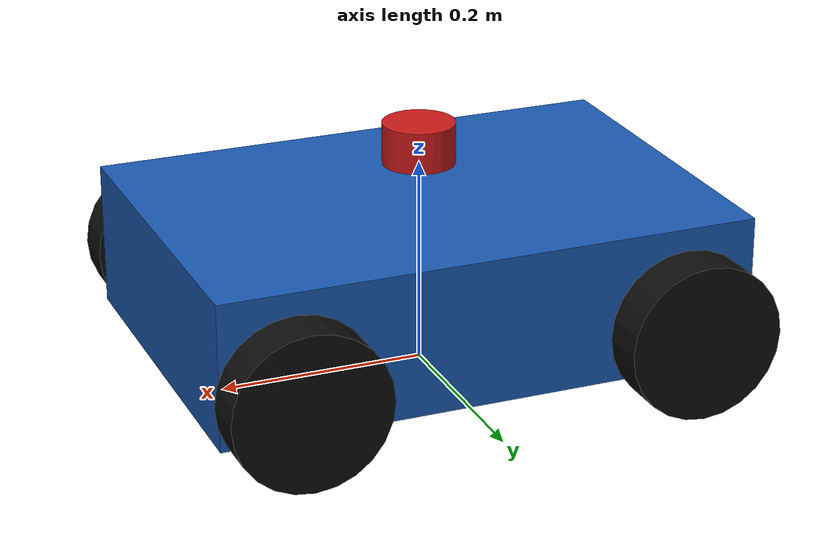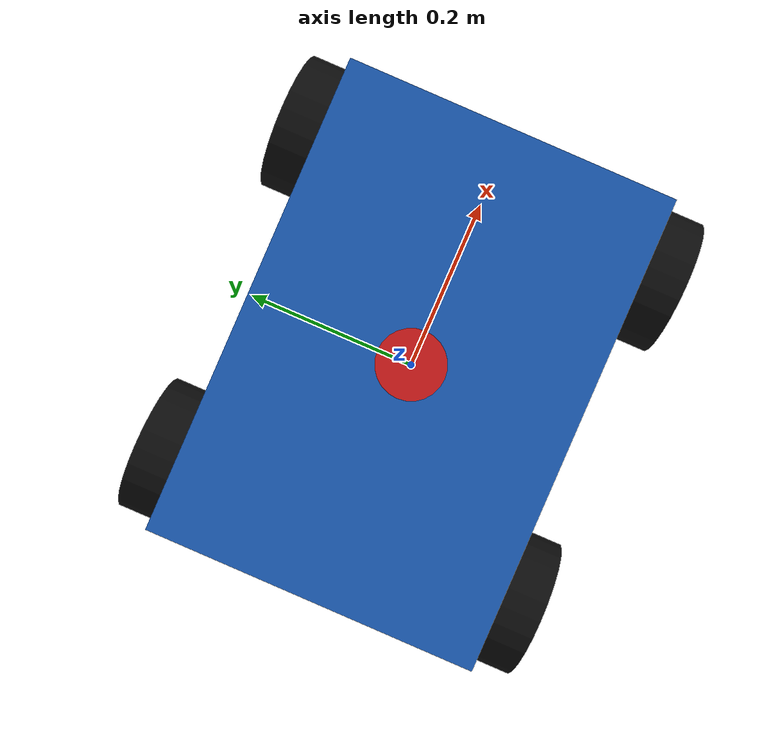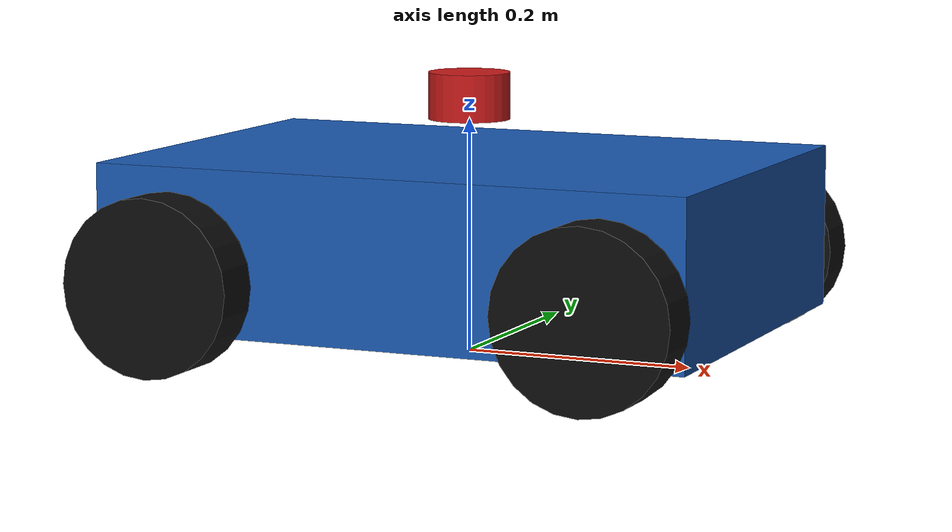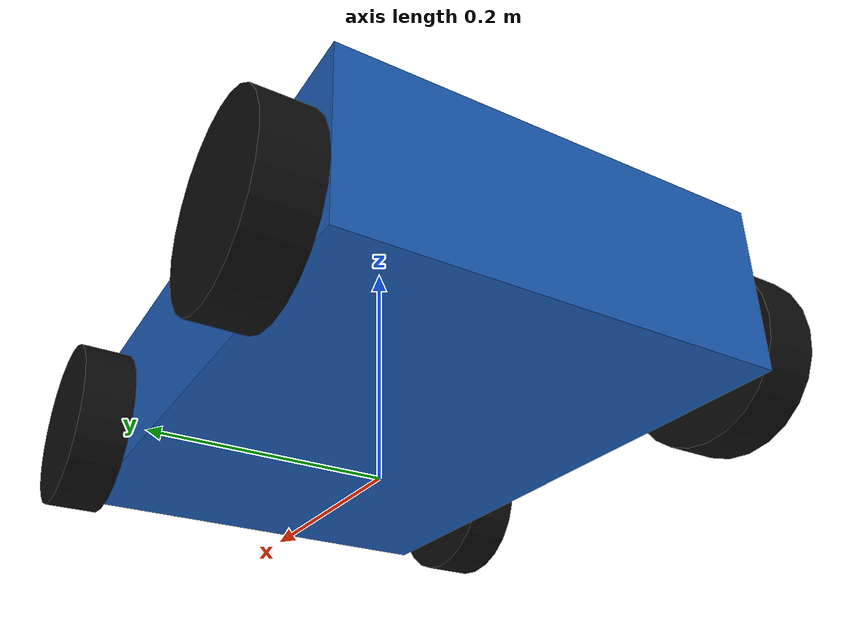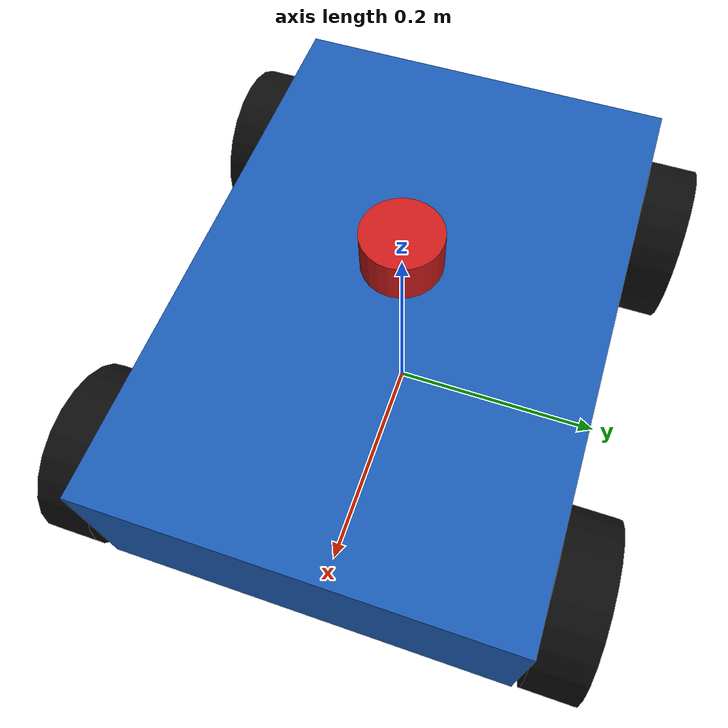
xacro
<?xml version="1.0"?>
<robot name="four_wheel_robot" xmlns:xacro="http://www.ros.org/wiki/xacro">
  <xacro:property name="body_length" value="0.52"/>
  <xacro:property name="body_width" value="0.36"/>
  <xacro:property name="body_height" value="0.14"/>
  <xacro:property name="wheel_radius" value="0.075"/>
  <xacro:property name="wheel_width" value="0.045"/>

  <link name="base_footprint"/>
  <link name="base_link">
    <inertial><origin xyz="0 0 0"/><mass value="8.0"/><inertia ixx="0.20" ixy="0" ixz="0" iyy="0.27" iyz="0" izz="0.42"/></inertial>
    <visual><origin xyz="0 0 0.10"/><geometry><box size="${body_length} ${body_width} ${body_height}"/></geometry><material name="blue"><color rgba="0.10 0.35 0.70 1"/></material></visual>
    <collision><origin xyz="0 0 0.10"/><geometry><box size="${body_length} ${body_width} ${body_height}"/></geometry></collision>
  </link>
  <joint name="base_footprint_joint" type="fixed"><parent link="base_footprint"/><child link="base_link"/><origin xyz="0 0 0"/></joint>

  <link name="laser_link">
    <inertial><mass value="0.1"/><inertia ixx="0.000044" ixy="0" ixz="0" iyy="0.000044" iyz="0" izz="0.00006125"/></inertial>
    <visual><geometry><cylinder radius="0.035" length="0.04"/></geometry><material name="laser_red"><color rgba="0.8 0.1 0.1 1"/></material></visual>
    <collision><geometry><cylinder radius="0.035" length="0.04"/></geometry></collision>
  </link>
  <joint name="laser_joint" type="fixed">
    <parent link="base_link"/><child link="laser_link"/><origin xyz="0 0 0.22"/>
  </joint>
  <gazebo reference="laser_link">
    <material>Gazebo/Red</material>
    <sensor name="planar_laser" type="ray">
      <always_on>true</always_on>
      <update_rate>10</update_rate>
      <visualize>false</visualize>
      <ray>
        <scan><horizontal>
          <samples>360</samples><resolution>1</resolution>
          <min_angle>-3.141592653589793</min_angle>
          <max_angle>3.141592653589793</max_angle>
        </horizontal></scan>
        <range><min>0.12</min><max>8.0</max><resolution>0.01</resolution></range>
      </ray>
      <plugin name="laser_ros" filename="libgazebo_ros_ray_sensor.so">
        <ros><namespace>/</namespace><remapping>~/out:=scan</remapping></ros>
        <output_type>sensor_msgs/LaserScan</output_type>
        <frame_name>laser_link</frame_name>
      </plugin>
    </sensor>
  </gazebo>

  <xacro:macro name="wheel" params="prefix x y">
    <link name="${prefix}_wheel_link">
      <inertial><origin xyz="0 0 0" rpy="1.5708 0 0"/><mass value="0.35"/><inertia ixx="0.001" ixy="0" ixz="0" iyy="0.001" iyz="0" izz="0.0015"/></inertial>
      <visual><origin xyz="0 0 0" rpy="1.5708 0 0"/><geometry><cylinder radius="${wheel_radius}" length="${wheel_width}"/></geometry><material name="black"><color rgba="0.05 0.05 0.05 1"/></material></visual>
      <collision><origin xyz="0 0 0" rpy="1.5708 0 0"/><geometry><cylinder radius="${wheel_radius}" length="${wheel_width}"/></geometry></collision>
    </link>
    <joint name="${prefix}_wheel_joint" type="continuous">
      <parent link="base_link"/><child link="${prefix}_wheel_link"/><origin xyz="${x} ${y} ${wheel_radius}" rpy="0 0 0"/><axis xyz="0 1 0"/>
    </joint>
    <gazebo reference="${prefix}_wheel_link"><mu1>1.5</mu1><mu2>1.5</mu2><kp>1000000.0</kp><kd>100.0</kd></gazebo>
  </xacro:macro>

  <xacro:wheel prefix="left_front" x="0.19" y="0.205"/>
  <xacro:wheel prefix="right_front" x="0.19" y="-0.205"/>
  <xacro:wheel prefix="left_rear" x="-0.19" y="0.205"/>
  <xacro:wheel prefix="right_rear" x="-0.19" y="-0.205"/>

  <gazebo>
    <plugin name="four_wheel_drive" filename="libgazebo_ros_diff_drive.so">
      <ros><namespace>/</namespace></ros>
      <update_rate>50</update_rate>
      <!-- Pair 1 is the front axle; pair 2 is the rear axle. -->
      <num_wheel_pairs>2</num_wheel_pairs>
      <left_joint>left_front_wheel_joint</left_joint>
      <right_joint>right_front_wheel_joint</right_joint>
      <left_joint>left_rear_wheel_joint</left_joint>
      <right_joint>right_rear_wheel_joint</right_joint>
      <!-- Geometry must be specified separately for each wheel pair. -->
      <wheel_separation>0.41</wheel_separation>
      <wheel_separation>0.41</wheel_separation>
      <wheel_diameter>0.15</wheel_diameter>
      <wheel_diameter>0.15</wheel_diameter>
      <max_wheel_torque>12.0</max_wheel_torque>
      <max_wheel_acceleration>3.0</max_wheel_acceleration>
      <odometry_frame>odom</odometry_frame>
      <robot_base_frame>base_footprint</robot_base_frame>
      <!-- 1 = Gazebo world ground truth, not wheel-encoder integration. -->
      <odometry_source>1</odometry_source>
      <publish_odom>true</publish_odom>
      <publish_odom_tf>true</publish_odom_tf>
      <!-- robot_state_publisher owns wheel TFs via /joint_states. -->
      <publish_wheel_tf>false</publish_wheel_tf>
    </plugin>
    <plugin name="wheel_joint_states" filename="libgazebo_ros_joint_state_publisher.so">
      <ros><namespace>/</namespace></ros>
      <update_rate>50</update_rate>
      <joint_name>left_front_wheel_joint</joint_name>
      <joint_name>right_front_wheel_joint</joint_name>
      <joint_name>left_rear_wheel_joint</joint_name>
      <joint_name>right_rear_wheel_joint</joint_name>
    </plugin>
  </gazebo>
</robot>
